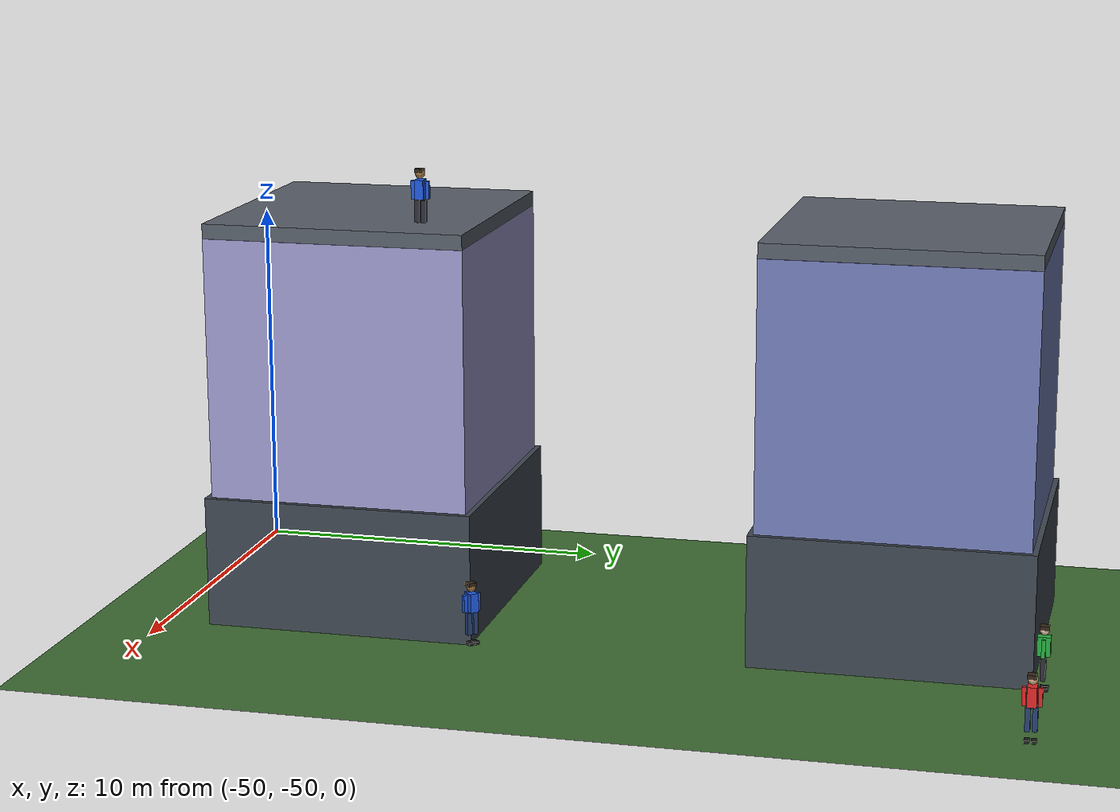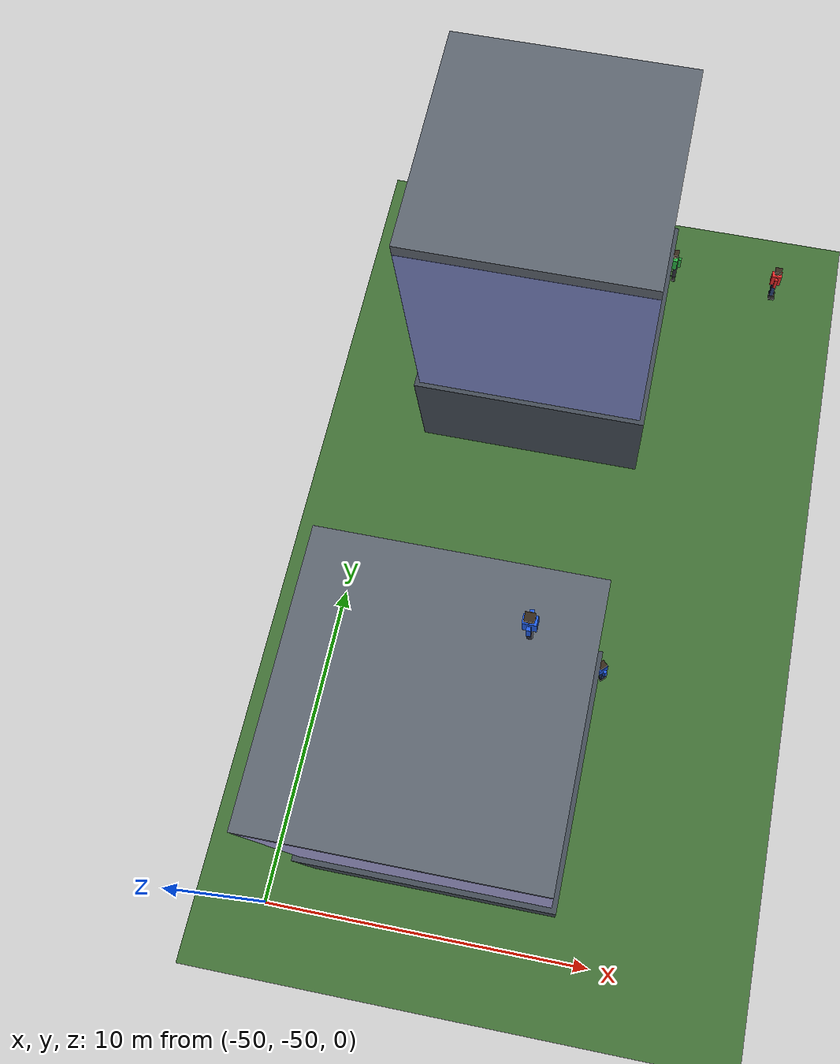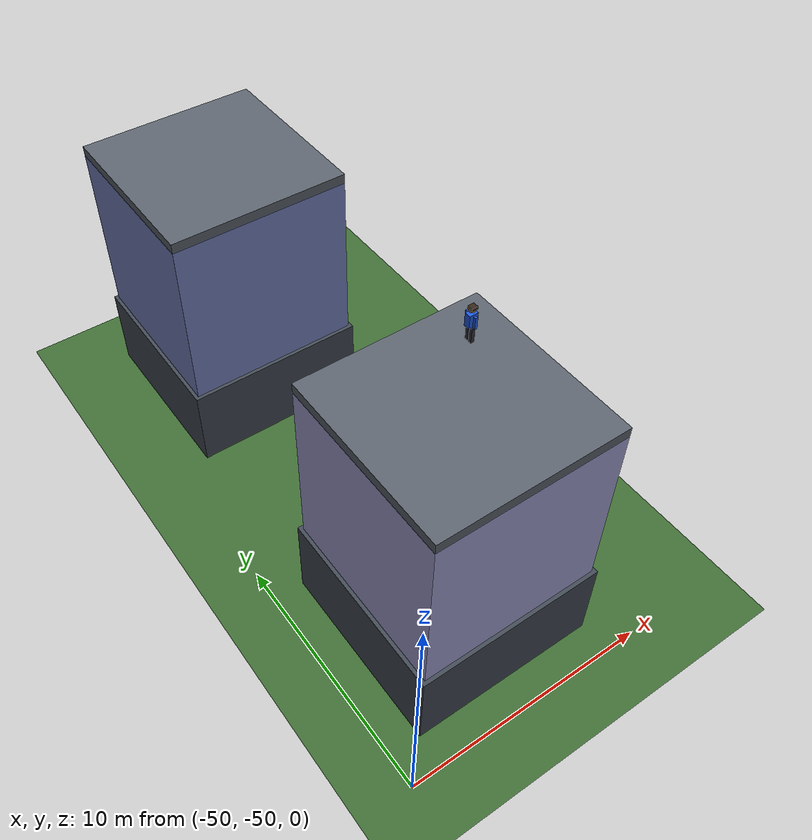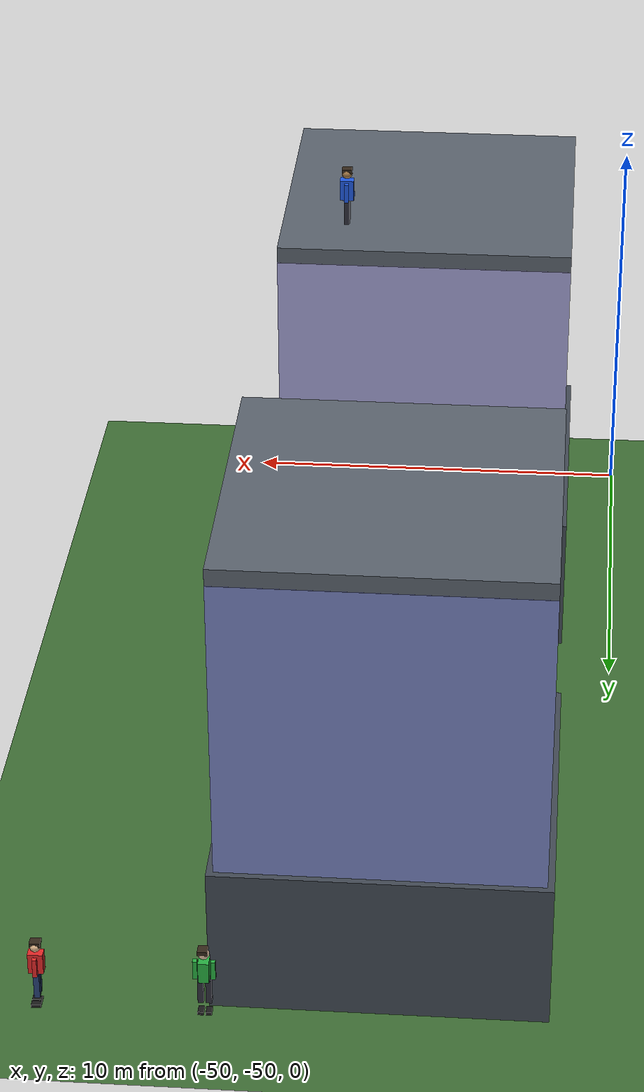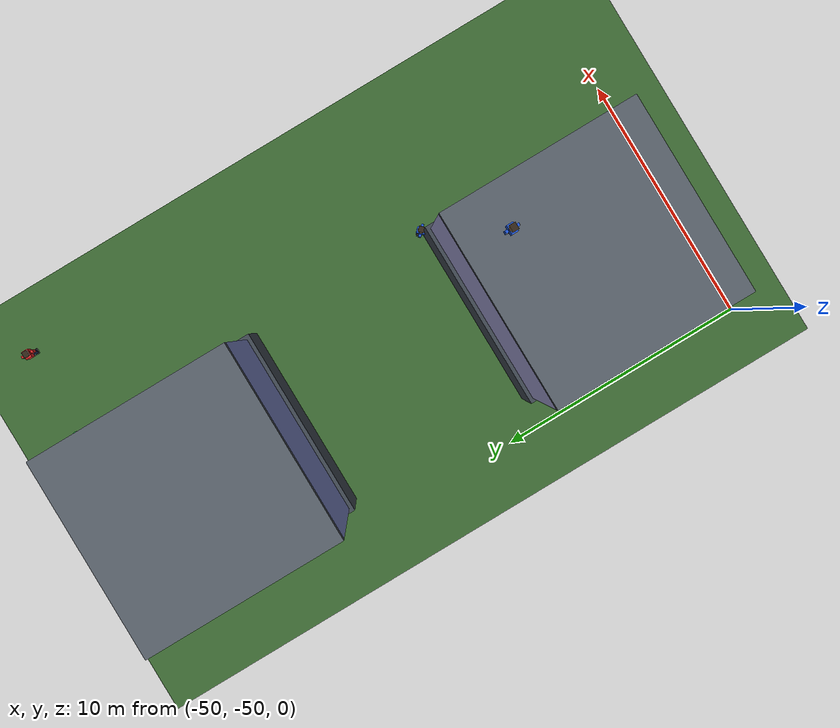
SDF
<sdf version="1.7">
 <world name="city_world">
  <model name="ground_plane">
   <static>true</static>
   <link name="link">
    <collision name="collision">
     <geometry><plane><normal>0 0 1</normal><size>300 300</size></plane></geometry>
     <surface><friction><ode><mu>100</mu><mu2>50</mu2></ode></friction></surface>
    </collision>
    <visual name="visual">
     <geometry><plane><normal>0 0 1</normal><size>300 300</size></plane></geometry>
     <material><ambient>0.24 0.42 0.20 1</ambient><diffuse>0.24 0.42 0.20 1</diffuse></material>
    </visual>
   </link>
  </model>
  <model name="pedestrian_0">
   <pose>-37.5 -26.0 0.02 0 0 0.0000</pose>
   <static>true</static>
   <link name="link">
    <visual name="head">
     <pose>0 0 1.62 0 0 0</pose>
     <geometry><sphere><radius>0.13</radius></sphere></geometry>
     <material><ambient>0.88 0.72 0.55 1</ambient><diffuse>0.88 0.72 0.55 1</diffuse></material>
    </visual>
    <visual name="cap">
     <pose>0 -0.02 1.70 0 0 0</pose>
     <geometry><box><size>0.24 0.22 0.10</size></box></geometry>
     <material><ambient>0.2 0.15 0.1 1</ambient><diffuse>0.2 0.15 0.1 1</diffuse></material>
    </visual>
    <visual name="torso">
     <pose>0 0 1.20 0 0 0</pose>
     <geometry><box><size>0.34 0.24 0.52</size></box></geometry>
     <material><ambient>0.88 0.15 0.15 1</ambient><diffuse>0.88 0.15 0.15 1</diffuse></material>
    </visual>
    <visual name="arm_l">
     <pose>0 0.20 1.18 0 0 0</pose>
     <geometry><box><size>0.10 0.10 0.48</size></box></geometry>
     <material><ambient>0.88 0.15 0.15 1</ambient><diffuse>0.88 0.15 0.15 1</diffuse></material>
    </visual>
    <visual name="arm_r">
     <pose>0 -0.20 1.18 0 0 0</pose>
     <geometry><box><size>0.10 0.10 0.48</size></box></geometry>
     <material><ambient>0.88 0.15 0.15 1</ambient><diffuse>0.88 0.15 0.15 1</diffuse></material>
    </visual>
    <visual name="leg_l">
     <pose>0 0.09 0.60 0 0 0</pose>
     <geometry><box><size>0.13 0.13 0.62</size></box></geometry>
     <material><ambient>0.15 0.25 0.45 1</ambient><diffuse>0.15 0.25 0.45 1</diffuse></material>
    </visual>
    <visual name="leg_r">
     <pose>0 -0.09 0.60 0 0 0</pose>
     <geometry><box><size>0.13 0.13 0.62</size></box></geometry>
     <material><ambient>0.15 0.25 0.45 1</ambient><diffuse>0.15 0.25 0.45 1</diffuse></material>
    </visual>
    <visual name="shoe_l">
     <pose>0.04 0.09 0.05 0 0 0</pose>
     <geometry><box><size>0.22 0.13 0.08</size></box></geometry>
     <material><ambient>0.1 0.1 0.1 1</ambient><diffuse>0.1 0.1 0.1 1</diffuse></material>
    </visual>
    <visual name="shoe_r">
     <pose>0.04 -0.09 0.05 0 0 0</pose>
     <geometry><box><size>0.22 0.13 0.08</size></box></geometry>
     <material><ambient>0.1 0.1 0.1 1</ambient><diffuse>0.1 0.1 0.1 1</diffuse></material>
    </visual>
   </link>
  </model>
  <model name="pedestrian_9">
   <pose>-41.2 -41.2 0.04 0 0 0.7854</pose>
   <static>true</static>
   <link name="link">
    <visual name="head">
     <pose>0 0 1.62 0 0 0</pose>
     <geometry><sphere><radius>0.13</radius></sphere></geometry>
     <material><ambient>0.65 0.48 0.28 1</ambient><diffuse>0.65 0.48 0.28 1</diffuse></material>
    </visual>
    <visual name="cap">
     <pose>0 -0.02 1.70 0 0 0</pose>
     <geometry><box><size>0.24 0.22 0.10</size></box></geometry>
     <material><ambient>0.2 0.15 0.1 1</ambient><diffuse>0.2 0.15 0.1 1</diffuse></material>
    </visual>
    <visual name="torso">
     <pose>0 0 1.20 0 0 0</pose>
     <geometry><box><size>0.34 0.24 0.52</size></box></geometry>
     <material><ambient>0.12 0.35 0.88 1</ambient><diffuse>0.12 0.35 0.88 1</diffuse></material>
    </visual>
    <visual name="arm_l">
     <pose>0 0.20 1.18 0 0 0</pose>
     <geometry><box><size>0.10 0.10 0.48</size></box></geometry>
     <material><ambient>0.12 0.35 0.88 1</ambient><diffuse>0.12 0.35 0.88 1</diffuse></material>
    </visual>
    <visual name="arm_r">
     <pose>0 -0.20 1.18 0 0 0</pose>
     <geometry><box><size>0.10 0.10 0.48</size></box></geometry>
     <material><ambient>0.12 0.35 0.88 1</ambient><diffuse>0.12 0.35 0.88 1</diffuse></material>
    </visual>
    <visual name="leg_l">
     <pose>0 0.09 0.60 0 0 0</pose>
     <geometry><box><size>0.13 0.13 0.62</size></box></geometry>
     <material><ambient>0.15 0.25 0.45 1</ambient><diffuse>0.15 0.25 0.45 1</diffuse></material>
    </visual>
    <visual name="leg_r">
     <pose>0 -0.09 0.60 0 0 0</pose>
     <geometry><box><size>0.13 0.13 0.62</size></box></geometry>
     <material><ambient>0.15 0.25 0.45 1</ambient><diffuse>0.15 0.25 0.45 1</diffuse></material>
    </visual>
    <visual name="shoe_l">
     <pose>0.04 0.09 0.05 0 0 0</pose>
     <geometry><box><size>0.22 0.13 0.08</size></box></geometry>
     <material><ambient>0.1 0.1 0.1 1</ambient><diffuse>0.1 0.1 0.1 1</diffuse></material>
    </visual>
    <visual name="shoe_r">
     <pose>0.04 -0.09 0.05 0 0 0</pose>
     <geometry><box><size>0.22 0.13 0.08</size></box></geometry>
     <material><ambient>0.1 0.1 0.1 1</ambient><diffuse>0.1 0.1 0.1 1</diffuse></material>
    </visual>
   </link>
  </model>
  <model name="pedestrian_10">
   <pose>-41.2 -26.0 0.04 0 0 1.5708</pose>
   <static>true</static>
   <link name="link">
    <visual name="head">
     <pose>0 0 1.62 0 0 0</pose>
     <geometry><sphere><radius>0.13</radius></sphere></geometry>
     <material><ambient>0.94 0.80 0.68 1</ambient><diffuse>0.94 0.80 0.68 1</diffuse></material>
    </visual>
    <visual name="cap">
     <pose>0 -0.02 1.70 0 0 0</pose>
     <geometry><box><size>0.24 0.22 0.10</size></box></geometry>
     <material><ambient>0.2 0.15 0.1 1</ambient><diffuse>0.2 0.15 0.1 1</diffuse></material>
    </visual>
    <visual name="torso">
     <pose>0 0 1.20 0 0 0</pose>
     <geometry><box><size>0.34 0.24 0.52</size></box></geometry>
     <material><ambient>0.15 0.68 0.25 1</ambient><diffuse>0.15 0.68 0.25 1</diffuse></material>
    </visual>
    <visual name="arm_l">
     <pose>0 0.20 1.18 0 0 0</pose>
     <geometry><box><size>0.10 0.10 0.48</size></box></geometry>
     <material><ambient>0.15 0.68 0.25 1</ambient><diffuse>0.15 0.68 0.25 1</diffuse></material>
    </visual>
    <visual name="arm_r">
     <pose>0 -0.20 1.18 0 0 0</pose>
     <geometry><box><size>0.10 0.10 0.48</size></box></geometry>
     <material><ambient>0.15 0.68 0.25 1</ambient><diffuse>0.15 0.68 0.25 1</diffuse></material>
    </visual>
    <visual name="leg_l">
     <pose>0 0.09 0.60 0 0 0</pose>
     <geometry><box><size>0.13 0.13 0.62</size></box></geometry>
     <material><ambient>0.18 0.18 0.22 1</ambient><diffuse>0.18 0.18 0.22 1</diffuse></material>
    </visual>
    <visual name="leg_r">
     <pose>0 -0.09 0.60 0 0 0</pose>
     <geometry><box><size>0.13 0.13 0.62</size></box></geometry>
     <material><ambient>0.18 0.18 0.22 1</ambient><diffuse>0.18 0.18 0.22 1</diffuse></material>
    </visual>
    <visual name="shoe_l">
     <pose>0.04 0.09 0.05 0 0 0</pose>
     <geometry><box><size>0.22 0.13 0.08</size></box></geometry>
     <material><ambient>0.1 0.1 0.1 1</ambient><diffuse>0.1 0.1 0.1 1</diffuse></material>
    </visual>
    <visual name="shoe_r">
     <pose>0.04 -0.09 0.05 0 0 0</pose>
     <geometry><box><size>0.22 0.13 0.08</size></box></geometry>
     <material><ambient>0.1 0.1 0.1 1</ambient><diffuse>0.1 0.1 0.1 1</diffuse></material>
    </visual>
   </link>
  </model>
  <model name="pedestrian_25">
   <pose>-43.0 -43.0 10.85 0 0 0.0000</pose>
   <static>true</static>
   <link name="link">
    <visual name="head">
     <pose>0 0 1.62 0 0 0</pose>
     <geometry><sphere><radius>0.13</radius></sphere></geometry>
     <material><ambient>0.65 0.48 0.28 1</ambient><diffuse>0.65 0.48 0.28 1</diffuse></material>
    </visual>
    <visual name="cap">
     <pose>0 -0.02 1.70 0 0 0</pose>
     <geometry><box><size>0.24 0.22 0.10</size></box></geometry>
     <material><ambient>0.2 0.15 0.1 1</ambient><diffuse>0.2 0.15 0.1 1</diffuse></material>
    </visual>
    <visual name="torso">
     <pose>0 0 1.20 0 0 0</pose>
     <geometry><box><size>0.34 0.24 0.52</size></box></geometry>
     <material><ambient>0.12 0.35 0.88 1</ambient><diffuse>0.12 0.35 0.88 1</diffuse></material>
    </visual>
    <visual name="arm_l">
     <pose>0 0.20 1.18 0 0 0</pose>
     <geometry><box><size>0.10 0.10 0.48</size></box></geometry>
     <material><ambient>0.12 0.35 0.88 1</ambient><diffuse>0.12 0.35 0.88 1</diffuse></material>
    </visual>
    <visual name="arm_r">
     <pose>0 -0.20 1.18 0 0 0</pose>
     <geometry><box><size>0.10 0.10 0.48</size></box></geometry>
     <material><ambient>0.12 0.35 0.88 1</ambient><diffuse>0.12 0.35 0.88 1</diffuse></material>
    </visual>
    <visual name="leg_l">
     <pose>0 0.09 0.60 0 0 0</pose>
     <geometry><box><size>0.13 0.13 0.62</size></box></geometry>
     <material><ambient>0.18 0.18 0.22 1</ambient><diffuse>0.18 0.18 0.22 1</diffuse></material>
    </visual>
    <visual name="leg_r">
     <pose>0 -0.09 0.60 0 0 0</pose>
     <geometry><box><size>0.13 0.13 0.62</size></box></geometry>
     <material><ambient>0.18 0.18 0.22 1</ambient><diffuse>0.18 0.18 0.22 1</diffuse></material>
    </visual>
    <visual name="shoe_l">
     <pose>0.04 0.09 0.05 0 0 0</pose>
     <geometry><box><size>0.22 0.13 0.08</size></box></geometry>
     <material><ambient>0.1 0.1 0.1 1</ambient><diffuse>0.1 0.1 0.1 1</diffuse></material>
    </visual>
    <visual name="shoe_r">
     <pose>0.04 -0.09 0.05 0 0 0</pose>
     <geometry><box><size>0.22 0.13 0.08</size></box></geometry>
     <material><ambient>0.1 0.1 0.1 1</ambient><diffuse>0.1 0.1 0.1 1</diffuse></material>
    </visual>
   </link>
  </model>
  <model name="building_0">
   <pose>-45.0 -45.0 5.375161328340004 0 0 0</pose>
   <static>true</static>
   <link name="link">
    <collision name="collision"><geometry><box><size>7.20 7.20 10.75</size></box></geometry></collision>
    <visual name="tower">
     <geometry><box><size>7.20 7.20 10.75</size></box></geometry>
     <material>
      <ambient>0.63 0.62 0.82 1</ambient>
      <diffuse>0.63 0.62 0.82 1</diffuse>
      <specular>0.3 0.3 0.3 1</specular>
     </material>
    </visual>
    <visual name="lobby">
     <pose>0 0 -3.58 0 0 0</pose>
     <geometry><box><size>7.50 7.50 3.6</size></box></geometry>
     <material><ambient>0.25 0.28 0.32 1</ambient><diffuse>0.25 0.28 0.32 1</diffuse></material>
    </visual>
    <visual name="parapet">
     <pose>0 0 5.58 0 0 0</pose>
     <geometry><box><size>7.20 7.20 0.4</size></box></geometry>
     <material><ambient>0.35 0.38 0.42 1</ambient><diffuse>0.35 0.38 0.42 1</diffuse></material>
    </visual>
   </link>
  </model>
  <model name="building_1">
   <pose>-45.0 -30.0 5.446958291571055 0 0 0</pose>
   <static>true</static>
   <link name="link">
    <collision name="collision"><geometry><box><size>7.20 7.20 10.89</size></box></geometry></collision>
    <visual name="tower">
     <geometry><box><size>7.20 7.20 10.89</size></box></geometry>
     <material>
      <ambient>0.46 0.50 0.74 1</ambient>
      <diffuse>0.46 0.50 0.74 1</diffuse>
      <specular>0.3 0.3 0.3 1</specular>
     </material>
    </visual>
    <visual name="lobby">
     <pose>0 0 -3.65 0 0 0</pose>
     <geometry><box><size>7.50 7.50 3.6</size></box></geometry>
     <material><ambient>0.25 0.28 0.32 1</ambient><diffuse>0.25 0.28 0.32 1</diffuse></material>
    </visual>
    <visual name="parapet">
     <pose>0 0 5.65 0 0 0</pose>
     <geometry><box><size>7.20 7.20 0.4</size></box></geometry>
     <material><ambient>0.35 0.38 0.42 1</ambient><diffuse>0.35 0.38 0.42 1</diffuse></material>
    </visual>
   </link>
  </model>
  <model name="helipad_0">
   <pose>-45.0 -45.0 10.8503 0 0 0</pose>
   <static>true</static>
   <link name="link">
    <visual name="pad">
     <geometry><cylinder><radius>2.5</radius><length>0.15</length></cylinder></geometry>
     <material><ambient>1.0 0.82 0.0 1</ambient><diffuse>1.0 0.82 0.0 1</diffuse></material>
    </visual>
    <visual name="ring">
     <pose>0 0 0.02 0 0 0</pose>
     <geometry><cylinder><radius>2.3</radius><length>0.12</length></cylinder></geometry>
     <material><ambient>0.2 0.2 0.2 1</ambient><diffuse>0.2 0.2 0.2 1</diffuse></material>
    </visual>
    <visual name="inner_pad">
     <pose>0 0 0.04 0 0 0</pose>
     <geometry><cylinder><radius>2.0</radius><length>0.10</length></cylinder></geometry>
     <material><ambient>1.0 0.82 0.0 1</ambient><diffuse>1.0 0.82 0.0 1</diffuse></material>
    </visual>
    <visual name="h_bar1">
     <pose>-0.75 0 0.10 0 0 0</pose>
     <geometry><box><size>0.35 1.8 0.02</size></box></geometry>
     <material><ambient>1 1 1 1</ambient><diffuse>1 1 1 1</diffuse></material>
    </visual>
    <visual name="h_bar2">
     <pose>0.75 0 0.10 0 0 0</pose>
     <geometry><box><size>0.35 1.8 0.02</size></box></geometry>
     <material><ambient>1 1 1 1</ambient><diffuse>1 1 1 1</diffuse></material>
    </visual>
    <visual name="h_cross">
     <pose>0 0 0.10 0 0 0</pose>
     <geometry><box><size>1.5 0.35 0.02</size></box></geometry>
     <material><ambient>1 1 1 1</ambient><diffuse>1 1 1 1</diffuse></material>
    </visual>
   </link>
  </model>
 </world>
</sdf>
